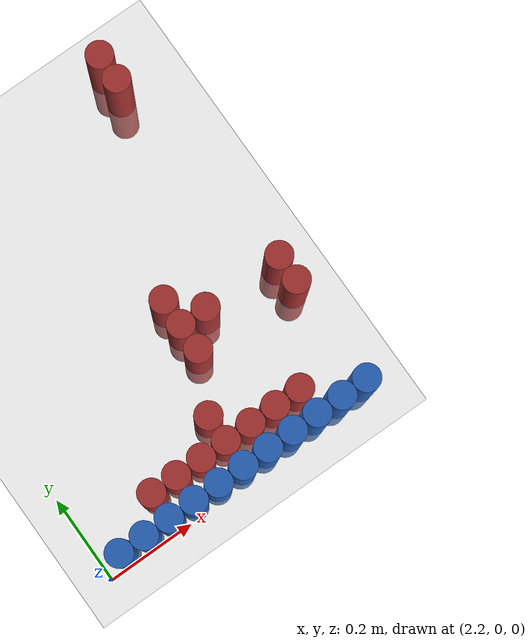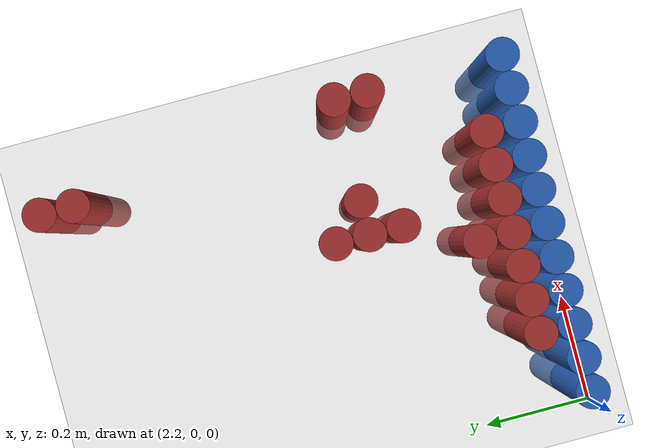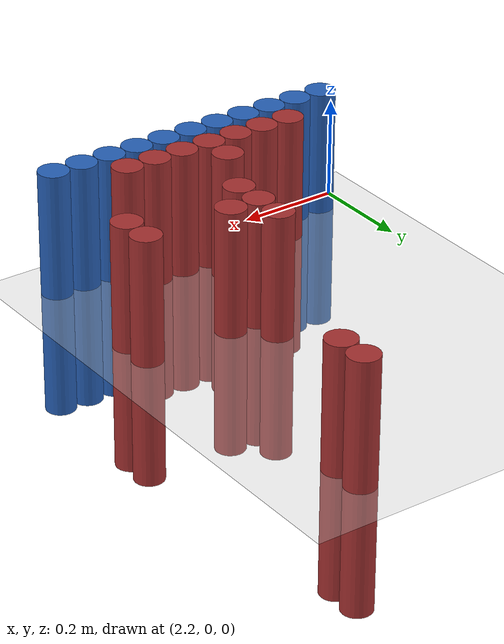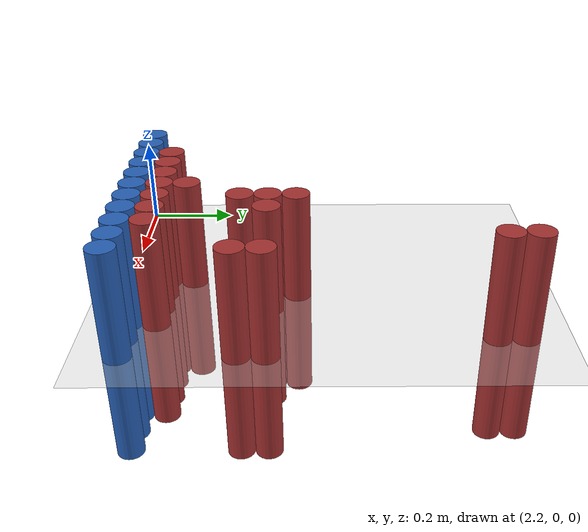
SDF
<sdf version="1.6">
 <world name="default">
  <model name="ground_plane">
   <static>1</static>
   <link name="link">
    <collision name="collision">
     <geometry><plane><normal>0 0 1</normal><size>100 100</size></plane></geometry>
     <surface><friction><ode><mu>100</mu><mu2>50</mu2></ode></friction></surface>
    </collision>
    <visual name="visual">
     <cast_shadows>0</cast_shadows>
     <geometry><plane><normal>0 0 1</normal><size>100 100</size></plane></geometry>
     <material>
      <script><uri>file://media/materials/scripts/gazebo.material</uri><name>Gazebo/Grey</name></script>
     </material>
    </visual>
   </link>
  </model>
  <model name="unit_cylinder_162">
   <static>1</static>
   <pose>2.790000 0.870000 0.000000 0.000000 0.000000 0.000000</pose>
   <link name="link">
    <inertial>
     <mass>1</mass>
     <inertia><ixx>0.145833</ixx><ixy>0</ixy><ixz>0</ixz><iyy>0.145833</iyy><iyz>0</iyz><izz>0.125</izz></inertia>
    </inertial>
    <collision name="collision">
     <geometry><cylinder><radius>0.030000</radius><length>0.5</length></cylinder></geometry>
    </collision>
    <visual name="visual">
     <geometry><cylinder><radius>0.030000</radius><length>0.5</length></cylinder></geometry>
     <material>
      <ambient>0.648000 0.192000 0.192000 1</ambient>
      <diffuse>0.648000 0.192000 0.192000 1</diffuse>
     </material>
     <material>
      <script><name>Gazebo/Grey</name><uri>file://media/materials/scripts/gazebo.material</uri></script>
     </material>
    </visual>
   </link>
  </model>
  <model name="unit_cylinder_165">
   <static>1</static>
   <pose>2.790000 0.810000 0.000000 0.000000 0.000000 0.000000</pose>
   <link name="link">
    <inertial>
     <mass>1</mass>
     <inertia><ixx>0.145833</ixx><ixy>0</ixy><ixz>0</ixz><iyy>0.145833</iyy><iyz>0</iyz><izz>0.125</izz></inertia>
    </inertial>
    <collision name="collision">
     <geometry><cylinder><radius>0.030000</radius><length>0.5</length></cylinder></geometry>
    </collision>
    <visual name="visual">
     <geometry><cylinder><radius>0.030000</radius><length>0.5</length></cylinder></geometry>
     <material>
      <ambient>0.648000 0.192000 0.192000 1</ambient>
      <diffuse>0.648000 0.192000 0.192000 1</diffuse>
     </material>
     <material>
      <script><name>Gazebo/Grey</name><uri>file://media/materials/scripts/gazebo.material</uri></script>
     </material>
    </visual>
   </link>
  </model>
  <model name="unit_cylinder_168">
   <static>1</static>
   <pose>2.610000 0.390000 0.000000 0.000000 0.000000 0.000000</pose>
   <link name="link">
    <inertial>
     <mass>1</mass>
     <inertia><ixx>0.145833</ixx><ixy>0</ixy><ixz>0</ixz><iyy>0.145833</iyy><iyz>0</iyz><izz>0.125</izz></inertia>
    </inertial>
    <collision name="collision">
     <geometry><cylinder><radius>0.030000</radius><length>0.5</length></cylinder></geometry>
    </collision>
    <visual name="visual">
     <geometry><cylinder><radius>0.030000</radius><length>0.5</length></cylinder></geometry>
     <material>
      <ambient>0.648000 0.192000 0.192000 1</ambient>
      <diffuse>0.648000 0.192000 0.192000 1</diffuse>
     </material>
     <material>
      <script><name>Gazebo/Grey</name><uri>file://media/materials/scripts/gazebo.material</uri></script>
     </material>
    </visual>
   </link>
  </model>
  <model name="unit_cylinder_169">
   <static>1</static>
   <pose>2.610000 0.330000 0.000000 0.000000 0.000000 0.000000</pose>
   <link name="link">
    <inertial>
     <mass>1</mass>
     <inertia><ixx>0.145833</ixx><ixy>0</ixy><ixz>0</ixz><iyy>0.145833</iyy><iyz>0</iyz><izz>0.125</izz></inertia>
    </inertial>
    <collision name="collision">
     <geometry><cylinder><radius>0.030000</radius><length>0.5</length></cylinder></geometry>
    </collision>
    <visual name="visual">
     <geometry><cylinder><radius>0.030000</radius><length>0.5</length></cylinder></geometry>
     <material>
      <ambient>0.648000 0.192000 0.192000 1</ambient>
      <diffuse>0.648000 0.192000 0.192000 1</diffuse>
     </material>
     <material>
      <script><name>Gazebo/Grey</name><uri>file://media/materials/scripts/gazebo.material</uri></script>
     </material>
    </visual>
   </link>
  </model>
  <model name="unit_cylinder_170">
   <static>1</static>
   <pose>2.670000 0.330000 0.000000 0.000000 0.000000 0.000000</pose>
   <link name="link">
    <inertial>
     <mass>1</mass>
     <inertia><ixx>0.145833</ixx><ixy>0</ixy><ixz>0</ixz><iyy>0.145833</iyy><iyz>0</iyz><izz>0.125</izz></inertia>
    </inertial>
    <collision name="collision">
     <geometry><cylinder><radius>0.030000</radius><length>0.5</length></cylinder></geometry>
    </collision>
    <visual name="visual">
     <geometry><cylinder><radius>0.030000</radius><length>0.5</length></cylinder></geometry>
     <material>
      <ambient>0.648000 0.192000 0.192000 1</ambient>
      <diffuse>0.648000 0.192000 0.192000 1</diffuse>
     </material>
     <material>
      <script><name>Gazebo/Grey</name><uri>file://media/materials/scripts/gazebo.material</uri></script>
     </material>
    </visual>
   </link>
  </model>
  <model name="unit_cylinder_171">
   <static>1</static>
   <pose>2.850000 0.330000 0.000000 0.000000 0.000000 0.000000</pose>
   <link name="link">
    <inertial>
     <mass>1</mass>
     <inertia><ixx>0.145833</ixx><ixy>0</ixy><ixz>0</ixz><iyy>0.145833</iyy><iyz>0</iyz><izz>0.125</izz></inertia>
    </inertial>
    <collision name="collision">
     <geometry><cylinder><radius>0.030000</radius><length>0.5</length></cylinder></geometry>
    </collision>
    <visual name="visual">
     <geometry><cylinder><radius>0.030000</radius><length>0.5</length></cylinder></geometry>
     <material>
      <ambient>0.648000 0.192000 0.192000 1</ambient>
      <diffuse>0.648000 0.192000 0.192000 1</diffuse>
     </material>
     <material>
      <script><name>Gazebo/Grey</name><uri>file://media/materials/scripts/gazebo.material</uri></script>
     </material>
    </visual>
   </link>
  </model>
  <model name="unit_cylinder_172">
   <static>1</static>
   <pose>2.610000 0.270000 0.000000 0.000000 0.000000 0.000000</pose>
   <link name="link">
    <inertial>
     <mass>1</mass>
     <inertia><ixx>0.145833</ixx><ixy>0</ixy><ixz>0</ixz><iyy>0.145833</iyy><iyz>0</iyz><izz>0.125</izz></inertia>
    </inertial>
    <collision name="collision">
     <geometry><cylinder><radius>0.030000</radius><length>0.5</length></cylinder></geometry>
    </collision>
    <visual name="visual">
     <geometry><cylinder><radius>0.030000</radius><length>0.5</length></cylinder></geometry>
     <material>
      <ambient>0.648000 0.192000 0.192000 1</ambient>
      <diffuse>0.648000 0.192000 0.192000 1</diffuse>
     </material>
     <material>
      <script><name>Gazebo/Grey</name><uri>file://media/materials/scripts/gazebo.material</uri></script>
     </material>
    </visual>
   </link>
  </model>
  <model name="unit_cylinder_173">
   <static>1</static>
   <pose>2.850000 0.270000 0.000000 0.000000 0.000000 0.000000</pose>
   <link name="link">
    <inertial>
     <mass>1</mass>
     <inertia><ixx>0.145833</ixx><ixy>0</ixy><ixz>0</ixz><iyy>0.145833</iyy><iyz>0</iyz><izz>0.125</izz></inertia>
    </inertial>
    <collision name="collision">
     <geometry><cylinder><radius>0.030000</radius><length>0.5</length></cylinder></geometry>
    </collision>
    <visual name="visual">
     <geometry><cylinder><radius>0.030000</radius><length>0.5</length></cylinder></geometry>
     <material>
      <ambient>0.648000 0.192000 0.192000 1</ambient>
      <diffuse>0.648000 0.192000 0.192000 1</diffuse>
     </material>
     <material>
      <script><name>Gazebo/Grey</name><uri>file://media/materials/scripts/gazebo.material</uri></script>
     </material>
    </visual>
   </link>
  </model>
  <model name="unit_cylinder_175">
   <static>1</static>
   <pose>2.550000 0.150000 0.000000 0.000000 0.000000 0.000000</pose>
   <link name="link">
    <inertial>
     <mass>1</mass>
     <inertia><ixx>0.145833</ixx><ixy>0</ixy><ixz>0</ixz><iyy>0.145833</iyy><iyz>0</iyz><izz>0.125</izz></inertia>
    </inertial>
    <collision name="collision">
     <geometry><cylinder><radius>0.030000</radius><length>0.5</length></cylinder></geometry>
    </collision>
    <visual name="visual">
     <geometry><cylinder><radius>0.030000</radius><length>0.5</length></cylinder></geometry>
     <material>
      <ambient>0.648000 0.192000 0.192000 1</ambient>
      <diffuse>0.648000 0.192000 0.192000 1</diffuse>
     </material>
     <material>
      <script><name>Gazebo/Grey</name><uri>file://media/materials/scripts/gazebo.material</uri></script>
     </material>
    </visual>
   </link>
  </model>
  <model name="unit_cylinder_176">
   <static>1</static>
   <pose>2.370000 0.090000 0.000000 0.000000 0.000000 0.000000</pose>
   <link name="link">
    <inertial>
     <mass>1</mass>
     <inertia><ixx>0.145833</ixx><ixy>0</ixy><ixz>0</ixz><iyy>0.145833</iyy><iyz>0</iyz><izz>0.125</izz></inertia>
    </inertial>
    <collision name="collision">
     <geometry><cylinder><radius>0.030000</radius><length>0.5</length></cylinder></geometry>
    </collision>
    <visual name="visual">
     <geometry><cylinder><radius>0.030000</radius><length>0.5</length></cylinder></geometry>
     <material>
      <ambient>0.648000 0.192000 0.192000 1</ambient>
      <diffuse>0.648000 0.192000 0.192000 1</diffuse>
     </material>
     <material>
      <script><name>Gazebo/Grey</name><uri>file://media/materials/scripts/gazebo.material</uri></script>
     </material>
    </visual>
   </link>
  </model>
  <model name="unit_cylinder_177">
   <static>1</static>
   <pose>2.430000 0.090000 0.000000 0.000000 0.000000 0.000000</pose>
   <link name="link">
    <inertial>
     <mass>1</mass>
     <inertia><ixx>0.145833</ixx><ixy>0</ixy><ixz>0</ixz><iyy>0.145833</iyy><iyz>0</iyz><izz>0.125</izz></inertia>
    </inertial>
    <collision name="collision">
     <geometry><cylinder><radius>0.030000</radius><length>0.5</length></cylinder></geometry>
    </collision>
    <visual name="visual">
     <geometry><cylinder><radius>0.030000</radius><length>0.5</length></cylinder></geometry>
     <material>
      <ambient>0.648000 0.192000 0.192000 1</ambient>
      <diffuse>0.648000 0.192000 0.192000 1</diffuse>
     </material>
     <material>
      <script><name>Gazebo/Grey</name><uri>file://media/materials/scripts/gazebo.material</uri></script>
     </material>
    </visual>
   </link>
  </model>
  <model name="unit_cylinder_178">
   <static>1</static>
   <pose>2.490000 0.090000 0.000000 0.000000 0.000000 0.000000</pose>
   <link name="link">
    <inertial>
     <mass>1</mass>
     <inertia><ixx>0.145833</ixx><ixy>0</ixy><ixz>0</ixz><iyy>0.145833</iyy><iyz>0</iyz><izz>0.125</izz></inertia>
    </inertial>
    <collision name="collision">
     <geometry><cylinder><radius>0.030000</radius><length>0.5</length></cylinder></geometry>
    </collision>
    <visual name="visual">
     <geometry><cylinder><radius>0.030000</radius><length>0.5</length></cylinder></geometry>
     <material>
      <ambient>0.648000 0.192000 0.192000 1</ambient>
      <diffuse>0.648000 0.192000 0.192000 1</diffuse>
     </material>
     <material>
      <script><name>Gazebo/Grey</name><uri>file://media/materials/scripts/gazebo.material</uri></script>
     </material>
    </visual>
   </link>
  </model>
  <model name="unit_cylinder_179">
   <static>1</static>
   <pose>2.550000 0.090000 0.000000 0.000000 0.000000 0.000000</pose>
   <link name="link">
    <inertial>
     <mass>1</mass>
     <inertia><ixx>0.145833</ixx><ixy>0</ixy><ixz>0</ixz><iyy>0.145833</iyy><iyz>0</iyz><izz>0.125</izz></inertia>
    </inertial>
    <collision name="collision">
     <geometry><cylinder><radius>0.030000</radius><length>0.5</length></cylinder></geometry>
    </collision>
    <visual name="visual">
     <geometry><cylinder><radius>0.030000</radius><length>0.5</length></cylinder></geometry>
     <material>
      <ambient>0.648000 0.192000 0.192000 1</ambient>
      <diffuse>0.648000 0.192000 0.192000 1</diffuse>
     </material>
     <material>
      <script><name>Gazebo/Grey</name><uri>file://media/materials/scripts/gazebo.material</uri></script>
     </material>
    </visual>
   </link>
  </model>
  <model name="unit_cylinder_180">
   <static>1</static>
   <pose>2.610000 0.090000 0.000000 0.000000 0.000000 0.000000</pose>
   <link name="link">
    <inertial>
     <mass>1</mass>
     <inertia><ixx>0.145833</ixx><ixy>0</ixy><ixz>0</ixz><iyy>0.145833</iyy><iyz>0</iyz><izz>0.125</izz></inertia>
    </inertial>
    <collision name="collision">
     <geometry><cylinder><radius>0.030000</radius><length>0.5</length></cylinder></geometry>
    </collision>
    <visual name="visual">
     <geometry><cylinder><radius>0.030000</radius><length>0.5</length></cylinder></geometry>
     <material>
      <ambient>0.648000 0.192000 0.192000 1</ambient>
      <diffuse>0.648000 0.192000 0.192000 1</diffuse>
     </material>
     <material>
      <script><name>Gazebo/Grey</name><uri>file://media/materials/scripts/gazebo.material</uri></script>
     </material>
    </visual>
   </link>
  </model>
  <model name="unit_cylinder_181">
   <static>1</static>
   <pose>2.670000 0.090000 0.000000 0.000000 0.000000 0.000000</pose>
   <link name="link">
    <inertial>
     <mass>1</mass>
     <inertia><ixx>0.145833</ixx><ixy>0</ixy><ixz>0</ixz><iyy>0.145833</iyy><iyz>0</iyz><izz>0.125</izz></inertia>
    </inertial>
    <collision name="collision">
     <geometry><cylinder><radius>0.030000</radius><length>0.5</length></cylinder></geometry>
    </collision>
    <visual name="visual">
     <geometry><cylinder><radius>0.030000</radius><length>0.5</length></cylinder></geometry>
     <material>
      <ambient>0.648000 0.192000 0.192000 1</ambient>
      <diffuse>0.648000 0.192000 0.192000 1</diffuse>
     </material>
     <material>
      <script><name>Gazebo/Grey</name><uri>file://media/materials/scripts/gazebo.material</uri></script>
     </material>
    </visual>
   </link>
  </model>
  <model name="unit_cylinder_182">
   <static>1</static>
   <pose>2.730000 0.090000 0.000000 0.000000 0.000000 0.000000</pose>
   <link name="link">
    <inertial>
     <mass>1</mass>
     <inertia><ixx>0.145833</ixx><ixy>0</ixy><ixz>0</ixz><iyy>0.145833</iyy><iyz>0</iyz><izz>0.125</izz></inertia>
    </inertial>
    <collision name="collision">
     <geometry><cylinder><radius>0.030000</radius><length>0.5</length></cylinder></geometry>
    </collision>
    <visual name="visual">
     <geometry><cylinder><radius>0.030000</radius><length>0.5</length></cylinder></geometry>
     <material>
      <ambient>0.648000 0.192000 0.192000 1</ambient>
      <diffuse>0.648000 0.192000 0.192000 1</diffuse>
     </material>
     <material>
      <script><name>Gazebo/Grey</name><uri>file://media/materials/scripts/gazebo.material</uri></script>
     </material>
    </visual>
   </link>
  </model>
  <model name="unit_cylinder_190">
   <static>1</static>
   <pose>2.250000 0.030000 0.000000 0.000000 0.000000 0.000000</pose>
   <link name="link">
    <inertial>
     <mass>1</mass>
     <inertia><ixx>0.145833</ixx><ixy>0</ixy><ixz>0</ixz><iyy>0.145833</iyy><iyz>0</iyz><izz>0.125</izz></inertia>
    </inertial>
    <collision name="collision">
     <geometry><cylinder><radius>0.030000</radius><length>0.5</length></cylinder></geometry>
    </collision>
    <visual name="visual">
     <geometry><cylinder><radius>0.030000</radius><length>0.5</length></cylinder></geometry>
     <material>
      <ambient>0.152000 0.379000 0.720000 1</ambient>
      <diffuse>0.152000 0.379000 0.720000 1</diffuse>
     </material>
     <material>
      <script><name>Gazebo/Grey</name><uri>file://media/materials/scripts/gazebo.material</uri></script>
     </material>
    </visual>
   </link>
  </model>
  <model name="unit_cylinder_191">
   <static>1</static>
   <pose>2.310000 0.030000 0.000000 0.000000 0.000000 0.000000</pose>
   <link name="link">
    <inertial>
     <mass>1</mass>
     <inertia><ixx>0.145833</ixx><ixy>0</ixy><ixz>0</ixz><iyy>0.145833</iyy><iyz>0</iyz><izz>0.125</izz></inertia>
    </inertial>
    <collision name="collision">
     <geometry><cylinder><radius>0.030000</radius><length>0.5</length></cylinder></geometry>
    </collision>
    <visual name="visual">
     <geometry><cylinder><radius>0.030000</radius><length>0.5</length></cylinder></geometry>
     <material>
      <ambient>0.152000 0.379000 0.720000 1</ambient>
      <diffuse>0.152000 0.379000 0.720000 1</diffuse>
     </material>
     <material>
      <script><name>Gazebo/Grey</name><uri>file://media/materials/scripts/gazebo.material</uri></script>
     </material>
    </visual>
   </link>
  </model>
  <model name="unit_cylinder_192">
   <static>1</static>
   <pose>2.370000 0.030000 0.000000 0.000000 0.000000 0.000000</pose>
   <link name="link">
    <inertial>
     <mass>1</mass>
     <inertia><ixx>0.145833</ixx><ixy>0</ixy><ixz>0</ixz><iyy>0.145833</iyy><iyz>0</iyz><izz>0.125</izz></inertia>
    </inertial>
    <collision name="collision">
     <geometry><cylinder><radius>0.030000</radius><length>0.5</length></cylinder></geometry>
    </collision>
    <visual name="visual">
     <geometry><cylinder><radius>0.030000</radius><length>0.5</length></cylinder></geometry>
     <material>
      <ambient>0.152000 0.379000 0.720000 1</ambient>
      <diffuse>0.152000 0.379000 0.720000 1</diffuse>
     </material>
     <material>
      <script><name>Gazebo/Grey</name><uri>file://media/materials/scripts/gazebo.material</uri></script>
     </material>
    </visual>
   </link>
  </model>
  <model name="unit_cylinder_193">
   <static>1</static>
   <pose>2.430000 0.030000 0.000000 0.000000 0.000000 0.000000</pose>
   <link name="link">
    <inertial>
     <mass>1</mass>
     <inertia><ixx>0.145833</ixx><ixy>0</ixy><ixz>0</ixz><iyy>0.145833</iyy><iyz>0</iyz><izz>0.125</izz></inertia>
    </inertial>
    <collision name="collision">
     <geometry><cylinder><radius>0.030000</radius><length>0.5</length></cylinder></geometry>
    </collision>
    <visual name="visual">
     <geometry><cylinder><radius>0.030000</radius><length>0.5</length></cylinder></geometry>
     <material>
      <ambient>0.152000 0.379000 0.720000 1</ambient>
      <diffuse>0.152000 0.379000 0.720000 1</diffuse>
     </material>
     <material>
      <script><name>Gazebo/Grey</name><uri>file://media/materials/scripts/gazebo.material</uri></script>
     </material>
    </visual>
   </link>
  </model>
  <model name="unit_cylinder_194">
   <static>1</static>
   <pose>2.490000 0.030000 0.000000 0.000000 0.000000 0.000000</pose>
   <link name="link">
    <inertial>
     <mass>1</mass>
     <inertia><ixx>0.145833</ixx><ixy>0</ixy><ixz>0</ixz><iyy>0.145833</iyy><iyz>0</iyz><izz>0.125</izz></inertia>
    </inertial>
    <collision name="collision">
     <geometry><cylinder><radius>0.030000</radius><length>0.5</length></cylinder></geometry>
    </collision>
    <visual name="visual">
     <geometry><cylinder><radius>0.030000</radius><length>0.5</length></cylinder></geometry>
     <material>
      <ambient>0.152000 0.379000 0.720000 1</ambient>
      <diffuse>0.152000 0.379000 0.720000 1</diffuse>
     </material>
     <material>
      <script><name>Gazebo/Grey</name><uri>file://media/materials/scripts/gazebo.material</uri></script>
     </material>
    </visual>
   </link>
  </model>
  <model name="unit_cylinder_195">
   <static>1</static>
   <pose>2.550000 0.030000 0.000000 0.000000 0.000000 0.000000</pose>
   <link name="link">
    <inertial>
     <mass>1</mass>
     <inertia><ixx>0.145833</ixx><ixy>0</ixy><ixz>0</ixz><iyy>0.145833</iyy><iyz>0</iyz><izz>0.125</izz></inertia>
    </inertial>
    <collision name="collision">
     <geometry><cylinder><radius>0.030000</radius><length>0.5</length></cylinder></geometry>
    </collision>
    <visual name="visual">
     <geometry><cylinder><radius>0.030000</radius><length>0.5</length></cylinder></geometry>
     <material>
      <ambient>0.152000 0.379000 0.720000 1</ambient>
      <diffuse>0.152000 0.379000 0.720000 1</diffuse>
     </material>
     <material>
      <script><name>Gazebo/Grey</name><uri>file://media/materials/scripts/gazebo.material</uri></script>
     </material>
    </visual>
   </link>
  </model>
  <model name="unit_cylinder_196">
   <static>1</static>
   <pose>2.610000 0.030000 0.000000 0.000000 0.000000 0.000000</pose>
   <link name="link">
    <inertial>
     <mass>1</mass>
     <inertia><ixx>0.145833</ixx><ixy>0</ixy><ixz>0</ixz><iyy>0.145833</iyy><iyz>0</iyz><izz>0.125</izz></inertia>
    </inertial>
    <collision name="collision">
     <geometry><cylinder><radius>0.030000</radius><length>0.5</length></cylinder></geometry>
    </collision>
    <visual name="visual">
     <geometry><cylinder><radius>0.030000</radius><length>0.5</length></cylinder></geometry>
     <material>
      <ambient>0.152000 0.379000 0.720000 1</ambient>
      <diffuse>0.152000 0.379000 0.720000 1</diffuse>
     </material>
     <material>
      <script><name>Gazebo/Grey</name><uri>file://media/materials/scripts/gazebo.material</uri></script>
     </material>
    </visual>
   </link>
  </model>
  <model name="unit_cylinder_197">
   <static>1</static>
   <pose>2.670000 0.030000 0.000000 0.000000 0.000000 0.000000</pose>
   <link name="link">
    <inertial>
     <mass>1</mass>
     <inertia><ixx>0.145833</ixx><ixy>0</ixy><ixz>0</ixz><iyy>0.145833</iyy><iyz>0</iyz><izz>0.125</izz></inertia>
    </inertial>
    <collision name="collision">
     <geometry><cylinder><radius>0.030000</radius><length>0.5</length></cylinder></geometry>
    </collision>
    <visual name="visual">
     <geometry><cylinder><radius>0.030000</radius><length>0.5</length></cylinder></geometry>
     <material>
      <ambient>0.152000 0.379000 0.720000 1</ambient>
      <diffuse>0.152000 0.379000 0.720000 1</diffuse>
     </material>
     <material>
      <script><name>Gazebo/Grey</name><uri>file://media/materials/scripts/gazebo.material</uri></script>
     </material>
    </visual>
   </link>
  </model>
  <model name="unit_cylinder_198">
   <static>1</static>
   <pose>2.730000 0.030000 0.000000 0.000000 0.000000 0.000000</pose>
   <link name="link">
    <inertial>
     <mass>1</mass>
     <inertia><ixx>0.145833</ixx><ixy>0</ixy><ixz>0</ixz><iyy>0.145833</iyy><iyz>0</iyz><izz>0.125</izz></inertia>
    </inertial>
    <collision name="collision">
     <geometry><cylinder><radius>0.030000</radius><length>0.5</length></cylinder></geometry>
    </collision>
    <visual name="visual">
     <geometry><cylinder><radius>0.030000</radius><length>0.5</length></cylinder></geometry>
     <material>
      <ambient>0.152000 0.379000 0.720000 1</ambient>
      <diffuse>0.152000 0.379000 0.720000 1</diffuse>
     </material>
     <material>
      <script><name>Gazebo/Grey</name><uri>file://media/materials/scripts/gazebo.material</uri></script>
     </material>
    </visual>
   </link>
  </model>
  <model name="unit_cylinder_199">
   <static>1</static>
   <pose>2.790000 0.030000 0.000000 0.000000 0.000000 0.000000</pose>
   <link name="link">
    <inertial>
     <mass>1</mass>
     <inertia><ixx>0.145833</ixx><ixy>0</ixy><ixz>0</ixz><iyy>0.145833</iyy><iyz>0</iyz><izz>0.125</izz></inertia>
    </inertial>
    <collision name="collision">
     <geometry><cylinder><radius>0.030000</radius><length>0.5</length></cylinder></geometry>
    </collision>
    <visual name="visual">
     <geometry><cylinder><radius>0.030000</radius><length>0.5</length></cylinder></geometry>
     <material>
      <ambient>0.152000 0.379000 0.720000 1</ambient>
      <diffuse>0.152000 0.379000 0.720000 1</diffuse>
     </material>
     <material>
      <script><name>Gazebo/Grey</name><uri>file://media/materials/scripts/gazebo.material</uri></script>
     </material>
    </visual>
   </link>
  </model>
  <model name="unit_cylinder_200">
   <static>1</static>
   <pose>2.850000 0.030000 0.000000 0.000000 0.000000 0.000000</pose>
   <link name="link">
    <inertial>
     <mass>1</mass>
     <inertia><ixx>0.145833</ixx><ixy>0</ixy><ixz>0</ixz><iyy>0.145833</iyy><iyz>0</iyz><izz>0.125</izz></inertia>
    </inertial>
    <collision name="collision">
     <geometry><cylinder><radius>0.030000</radius><length>0.5</length></cylinder></geometry>
    </collision>
    <visual name="visual">
     <geometry><cylinder><radius>0.030000</radius><length>0.5</length></cylinder></geometry>
     <material>
      <ambient>0.152000 0.379000 0.720000 1</ambient>
      <diffuse>0.152000 0.379000 0.720000 1</diffuse>
     </material>
     <material>
      <script><name>Gazebo/Grey</name><uri>file://media/materials/scripts/gazebo.material</uri></script>
     </material>
    </visual>
   </link>
  </model>
 </world>
</sdf>
